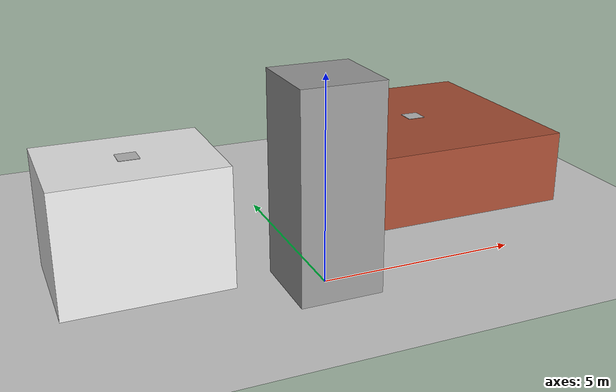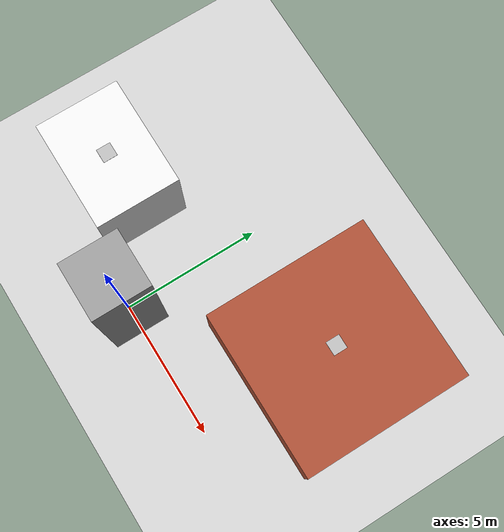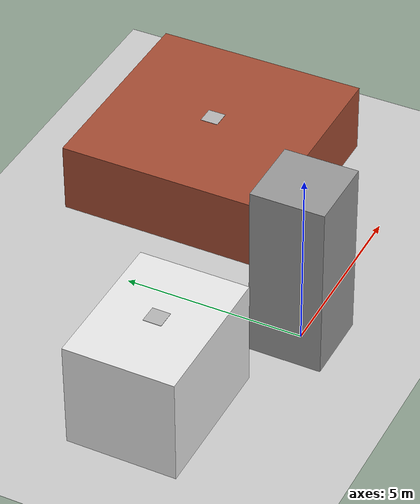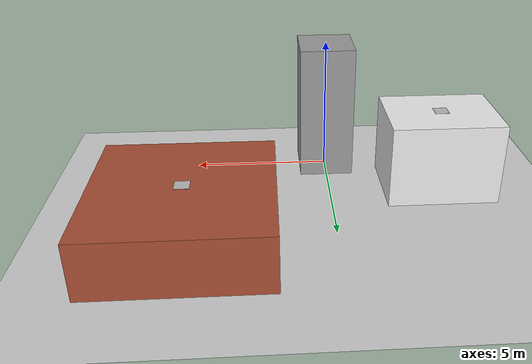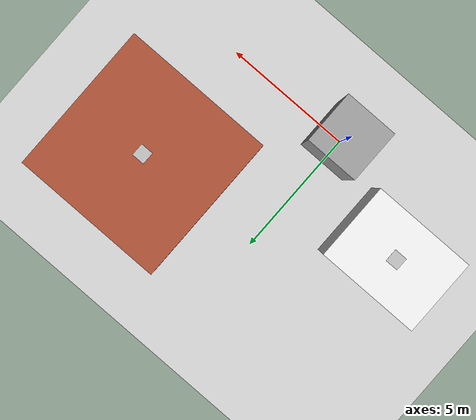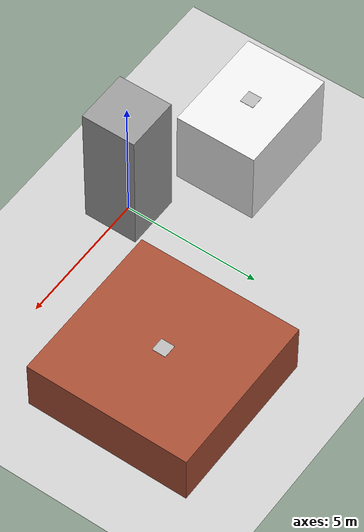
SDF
<?xml version="1.0" ?>
<sdf version="1.5">
  <world name="default">
    <!-- Light and Ground -->
    <include><uri>model://sun</uri></include>
    <include><uri>model://ground_plane</uri></include>

    <!-- BUILDING 1: Tall Tower (No Tag) -->
    <model name="tower">
      <pose>0 0 2.5 0 0 0</pose> <!-- 5m tall, so center is at 2.5m -->
      <static>true</static>
      <link name="link">
        <visual name="visual">
          <geometry><box><size>2 2 5</size></box></geometry>
          <material><script><name>Gazebo/Grey</name></script></material>
        </visual>
        <collision name="collision">
          <geometry><box><size>2 2 5</size></box></geometry>
        </collision>
      </link>
    </model>

    <!-- BUILDING 2: Wide Base (Tag 0) -->
    <model name="base_station">
      <pose>5 5 1 0 0 0</pose> <!-- 2m tall -->
      <static>true</static>
      <link name="link">
        <visual name="visual">
          <geometry><box><size>6 6 2</size></box></geometry>
          <material><script><name>Gazebo/Bricks</name></script></material>
        </visual>
        <collision name="collision">
          <geometry><box><size>6 6 2</size></box></geometry>
        </collision>
      </link>
    </model>

    <!-- LANDING PAD 0 (On top of Building 2) -->
    <include>
      <uri>model://landing_pad_0</uri>
      <pose>5 5 2.01 0 0 0</pose> <!-- Z = Height of bldg + tiny offset -->
    </include>

    <!-- BUILDING 3: Outpost (Tag 1) -->
    <model name="outpost">
      <pose>-4 2 1.5 0 0 0</pose> <!-- 3m tall -->
      <static>true</static>
      <link name="link">
        <visual name="visual">
          <geometry><box><size>4 3 3</size></box></geometry>
          <material><script><name>Gazebo/White</name></script></material>
        </visual>
        <collision name="collision">
          <geometry><box><size>4 3 3</size></box></geometry>
        </collision>
      </link>
    </model>

    <!-- LANDING PAD 1 (On top of Building 3) -->
    <include>
      <uri>model://landing_pad_1</uri>
      <pose>-4 2 3.01 0 0 0</pose>
    </include>

  </world>
</sdf>

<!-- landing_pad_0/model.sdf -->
<sdf version="1.5">
  <model name="landing_pad_0">
    <static>true</static>
    <link name="link">
      <collision name="collision">
        <geometry><box><size>0.5 0.5 0.01</size></box></geometry>
      </collision>
      <visual name="visual">
        <geometry><box><size>0.5 0.5 0.01</size></box></geometry>
        <material>
          <script>
            <uri>model://landing_pad_0/materials/scripts</uri>
            <uri>model://landing_pad_0/materials/textures</uri>
            <name>AprilTag/Tag0</name>
          </script>
        </material>
      </visual>
    </link>
  </model>
</sdf>

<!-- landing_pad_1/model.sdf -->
<sdf version="1.5">
  <model name="landing_pad_1">
    <static>true</static>
    <link name="link">
      <collision name="collision">
        <geometry><box><size>0.5 0.5 0.01</size></box></geometry>
      </collision>
      <visual name="visual">
        <geometry><box><size>0.5 0.5 0.01</size></box></geometry>
        <material>
          <script>
            <uri>model://landing_pad_1/materials/scripts</uri>
            <uri>model://landing_pad_1/materials/textures</uri>
            <name>AprilTag/Tag1</name>
          </script>
        </material>
      </visual>
    </link>
  </model>
</sdf>
